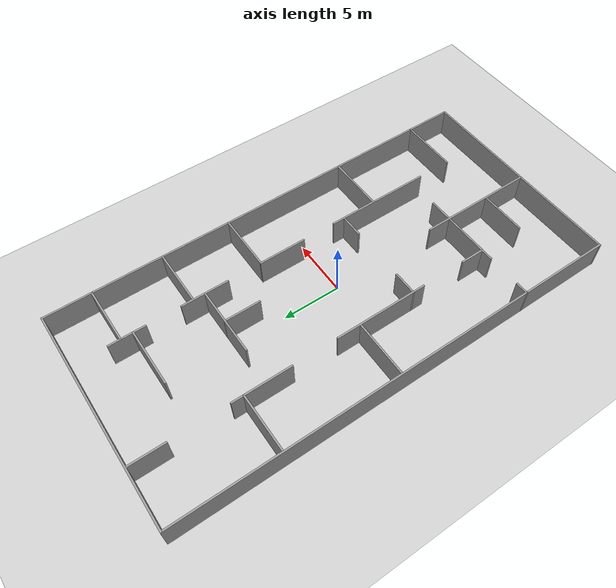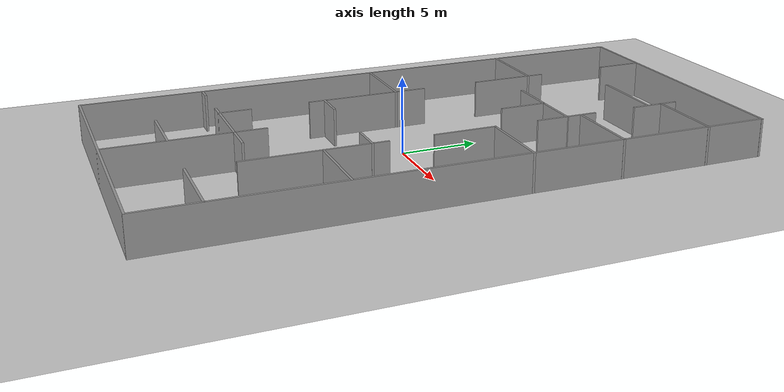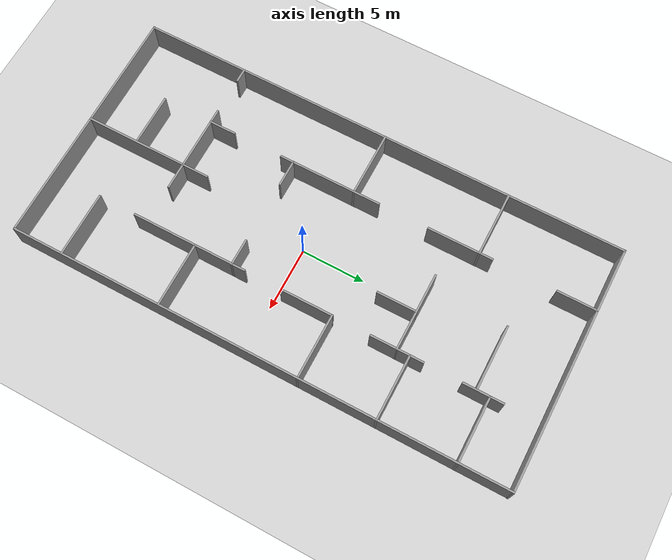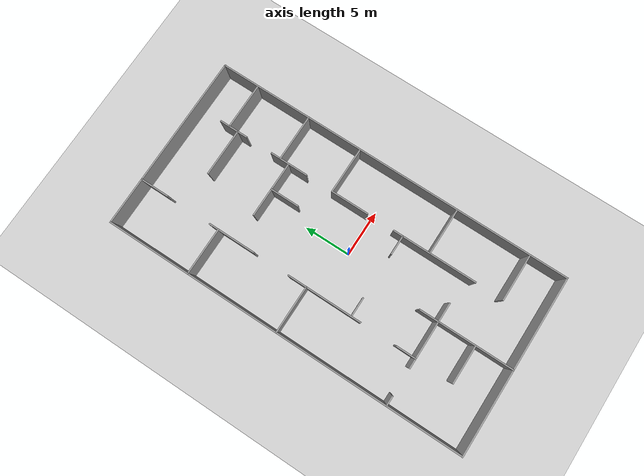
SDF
<sdf version="1.6">
 <world name="default">
  <light name="sun" type="directional">
   <pose>0 0 10 0 -0 0</pose>
   <diffuse>0.8 0.8 0.8 1</diffuse>
   <specular>0.1 0.1 0.1 1</specular>
   <attenuation>
    <range>1000</range>
    <constant>0.9</constant>
    <linear>0.01</linear>
    <quadratic>0.001</quadratic>
   </attenuation>
   <direction>-0.5 0.5 -1</direction>
  </light>
  <model name="ground_plane">
   <static>1</static>
   <link name="link">
    <collision name="collision">
     <geometry><plane><normal>0 0 1</normal><size>100 100</size></plane></geometry>
     <surface><friction><ode><mu>100</mu><mu2>50</mu2></ode></friction></surface>
    </collision>
    <visual name="visual">
     <cast_shadows>0</cast_shadows>
     <geometry><plane><normal>0 0 1</normal><size>100 100</size></plane></geometry>
     <material>
      <script><uri>file://media/materials/scripts/gazebo.material</uri><name>Gazebo/Grey</name></script>
     </material>
    </visual>
   </link>
  </model>
  <gravity>0 0 -9.8</gravity>
  <magnetic_field>6e-06 2.3e-05 -4.2e-05</magnetic_field>
  <atmosphere type="adiabatic"/>
  <physics name="default_physics" default="0" type="ode">
   <max_step_size>0.001</max_step_size>
   <real_time_factor>1</real_time_factor>
   <real_time_update_rate>1000</real_time_update_rate>
  </physics>
  <scene><ambient>0.4 0.4 0.4 1</ambient><background>0.7 0.7 0.7 1</background><shadows>1</shadows></scene>
  <spherical_coordinates>
   <surface_model>EARTH_WGS84</surface_model>
   <latitude_deg>0</latitude_deg>
   <longitude_deg>0</longitude_deg>
   <elevation>0</elevation>
   <heading_deg>0</heading_deg>
  </spherical_coordinates>
  <model name="test">
   <link name="Wall_0">
    <collision name="Wall_0_Collision">
     <geometry><box><size>19.15 0.15 2.5</size></box></geometry>
     <pose>0 0 1.25 0 -0 0</pose>
    </collision>
    <visual name="Wall_0_Visual">
     <pose>0 0 1.25 0 -0 0</pose>
     <geometry><box><size>19.15 0.15 2.5</size></box></geometry>
     <material>
      <script><uri>file://media/materials/scripts/gazebo.material</uri><name>Gazebo/Grey</name></script>
      <ambient>1 1 1 1</ambient>
     </material>
    </visual>
    <pose>-0.50 20.50 0 0 -0 0.00</pose>
   </link>
   <link name="Wall_1">
    <collision name="Wall_1_Collision">
     <geometry><box><size>5.15 0.15 2.5</size></box></geometry>
     <pose>0 0 1.25 0 -0 0</pose>
    </collision>
    <visual name="Wall_1_Visual">
     <pose>0 0 1.25 0 -0 0</pose>
     <geometry><box><size>5.15 0.15 2.5</size></box></geometry>
     <material>
      <script><uri>file://media/materials/scripts/gazebo.material</uri><name>Gazebo/Grey</name></script>
      <ambient>1 1 1 1</ambient>
     </material>
    </visual>
    <pose>6.50 16.50 0 0 -0 0.00</pose>
   </link>
   <link name="Wall_2">
    <collision name="Wall_2_Collision">
     <geometry><box><size>5.15 0.15 2.5</size></box></geometry>
     <pose>0 0 1.25 0 -0 0</pose>
    </collision>
    <visual name="Wall_2_Visual">
     <pose>0 0 1.25 0 -0 0</pose>
     <geometry><box><size>5.15 0.15 2.5</size></box></geometry>
     <material>
      <script><uri>file://media/materials/scripts/gazebo.material</uri><name>Gazebo/Grey</name></script>
      <ambient>1 1 1 1</ambient>
     </material>
    </visual>
    <pose>1.50 15.50 0 0 -0 0.00</pose>
   </link>
   <link name="Wall_3">
    <collision name="Wall_3_Collision">
     <geometry><box><size>5.15 0.15 2.5</size></box></geometry>
     <pose>0 0 1.25 0 -0 0</pose>
    </collision>
    <visual name="Wall_3_Visual">
     <pose>0 0 1.25 0 -0 0</pose>
     <geometry><box><size>5.15 0.15 2.5</size></box></geometry>
     <material>
      <script><uri>file://media/materials/scripts/gazebo.material</uri><name>Gazebo/Grey</name></script>
      <ambient>1 1 1 1</ambient>
     </material>
    </visual>
    <pose>-7.50 11.50 0 0 -0 0.00</pose>
   </link>
   <link name="Wall_4">
    <collision name="Wall_4_Collision">
     <geometry><box><size>5.15 0.15 2.5</size></box></geometry>
     <pose>0 0 1.25 0 -0 0</pose>
    </collision>
    <visual name="Wall_4_Visual">
     <pose>0 0 1.25 0 -0 0</pose>
     <geometry><box><size>5.15 0.15 2.5</size></box></geometry>
     <material>
      <script><uri>file://media/materials/scripts/gazebo.material</uri><name>Gazebo/Grey</name></script>
      <ambient>1 1 1 1</ambient>
     </material>
    </visual>
    <pose>6.50 10.50 0 0 -0 0.00</pose>
   </link>
   <link name="Wall_5">
    <collision name="Wall_5_Collision">
     <geometry><box><size>6.15 0.15 2.5</size></box></geometry>
     <pose>0 0 1.25 0 -0 0</pose>
    </collision>
    <visual name="Wall_5_Visual">
     <pose>0 0 1.25 0 -0 0</pose>
     <geometry><box><size>6.15 0.15 2.5</size></box></geometry>
     <material>
      <script><uri>file://media/materials/scripts/gazebo.material</uri><name>Gazebo/Grey</name></script>
      <ambient>1 1 1 1</ambient>
     </material>
    </visual>
    <pose>1.00 9.50 0 0 -0 0.00</pose>
   </link>
   <link name="Wall_6">
    <collision name="Wall_6_Collision">
     <geometry><box><size>5.15 0.15 2.5</size></box></geometry>
     <pose>0 0 1.25 0 -0 0</pose>
    </collision>
    <visual name="Wall_6_Visual">
     <pose>0 0 1.25 0 -0 0</pose>
     <geometry><box><size>5.15 0.15 2.5</size></box></geometry>
     <material>
      <script><uri>file://media/materials/scripts/gazebo.material</uri><name>Gazebo/Grey</name></script>
      <ambient>1 1 1 1</ambient>
     </material>
    </visual>
    <pose>6.50 4.50 0 0 -0 0.00</pose>
   </link>
   <link name="Wall_7">
    <collision name="Wall_7_Collision">
     <geometry><box><size>5.15 0.15 2.5</size></box></geometry>
     <pose>0 0 1.25 0 -0 0</pose>
    </collision>
    <visual name="Wall_7_Visual">
     <pose>0 0 1.25 0 -0 0</pose>
     <geometry><box><size>5.15 0.15 2.5</size></box></geometry>
     <material>
      <script><uri>file://media/materials/scripts/gazebo.material</uri><name>Gazebo/Grey</name></script>
      <ambient>1 1 1 1</ambient>
     </material>
    </visual>
    <pose>-7.50 1.50 0 0 -0 0.00</pose>
   </link>
   <link name="Wall_8">
    <collision name="Wall_8_Collision">
     <geometry><box><size>2.15 0.15 2.5</size></box></geometry>
     <pose>0 0 1.25 0 -0 0</pose>
    </collision>
    <visual name="Wall_8_Visual">
     <pose>0 0 1.25 0 -0 0</pose>
     <geometry><box><size>2.15 0.15 2.5</size></box></geometry>
     <material>
      <script><uri>file://media/materials/scripts/gazebo.material</uri><name>Gazebo/Grey</name></script>
      <ambient>1 1 1 1</ambient>
     </material>
    </visual>
    <pose>-4.00 -3.50 0 0 -0 0.00</pose>
   </link>
   <link name="Wall_9">
    <collision name="Wall_9_Collision">
     <geometry><box><size>2.15 0.15 2.5</size></box></geometry>
     <pose>0 0 1.25 0 -0 0</pose>
    </collision>
    <visual name="Wall_9_Visual">
     <pose>0 0 1.25 0 -0 0</pose>
     <geometry><box><size>2.15 0.15 2.5</size></box></geometry>
     <material>
      <script><uri>file://media/materials/scripts/gazebo.material</uri><name>Gazebo/Grey</name></script>
      <ambient>1 1 1 1</ambient>
     </material>
    </visual>
    <pose>3.00 -3.50 0 0 -0 0.00</pose>
   </link>
   <link name="Wall_10">
    <collision name="Wall_10_Collision">
     <geometry><box><size>5.15 0.15 2.5</size></box></geometry>
     <pose>0 0 1.25 0 -0 0</pose>
    </collision>
    <visual name="Wall_10_Visual">
     <pose>0 0 1.25 0 -0 0</pose>
     <geometry><box><size>5.15 0.15 2.5</size></box></geometry>
     <material>
      <script><uri>file://media/materials/scripts/gazebo.material</uri><name>Gazebo/Grey</name></script>
      <ambient>1 1 1 1</ambient>
     </material>
    </visual>
    <pose>6.50 -6.50 0 0 -0 0.00</pose>
   </link>
   <link name="Wall_11">
    <collision name="Wall_11_Collision">
     <geometry><box><size>1.15 0.15 2.5</size></box></geometry>
     <pose>0 0 1.25 0 -0 0</pose>
    </collision>
    <visual name="Wall_11_Visual">
     <pose>0 0 1.25 0 -0 0</pose>
     <geometry><box><size>1.15 0.15 2.5</size></box></geometry>
     <material>
      <script><uri>file://media/materials/scripts/gazebo.material</uri><name>Gazebo/Grey</name></script>
      <ambient>1 1 1 1</ambient>
     </material>
    </visual>
    <pose>-9.50 -10.50 0 0 -0 0.00</pose>
   </link>
   <link name="Wall_12">
    <collision name="Wall_12_Collision">
     <geometry><box><size>7.15 0.15 2.5</size></box></geometry>
     <pose>0 0 1.25 0 -0 0</pose>
    </collision>
    <visual name="Wall_12_Visual">
     <pose>0 0 1.25 0 -0 0</pose>
     <geometry><box><size>7.15 0.15 2.5</size></box></geometry>
     <material>
      <script><uri>file://media/materials/scripts/gazebo.material</uri><name>Gazebo/Grey</name></script>
      <ambient>1 1 1 1</ambient>
     </material>
    </visual>
    <pose>-2.50 -10.50 0 0 -0 0.00</pose>
   </link>
   <link name="Wall_13">
    <collision name="Wall_13_Collision">
     <geometry><box><size>4.15 0.15 2.5</size></box></geometry>
     <pose>0 0 1.25 0 -0 0</pose>
    </collision>
    <visual name="Wall_13_Visual">
     <pose>0 0 1.25 0 -0 0</pose>
     <geometry><box><size>4.15 0.15 2.5</size></box></geometry>
     <material>
      <script><uri>file://media/materials/scripts/gazebo.material</uri><name>Gazebo/Grey</name></script>
      <ambient>1 1 1 1</ambient>
     </material>
    </visual>
    <pose>-3.00 -14.50 0 0 -0 0.00</pose>
   </link>
   <link name="Wall_14">
    <collision name="Wall_14_Collision">
     <geometry><box><size>5.15 0.15 2.5</size></box></geometry>
     <pose>0 0 1.25 0 -0 0</pose>
    </collision>
    <visual name="Wall_14_Visual">
     <pose>0 0 1.25 0 -0 0</pose>
     <geometry><box><size>5.15 0.15 2.5</size></box></geometry>
     <material>
      <script><uri>file://media/materials/scripts/gazebo.material</uri><name>Gazebo/Grey</name></script>
      <ambient>1 1 1 1</ambient>
     </material>
    </visual>
    <pose>6.50 -14.50 0 0 -0 0.00</pose>
   </link>
   <link name="Wall_15">
    <collision name="Wall_15_Collision">
     <geometry><box><size>19.15 0.15 2.5</size></box></geometry>
     <pose>0 0 1.25 0 -0 0</pose>
    </collision>
    <visual name="Wall_15_Visual">
     <pose>0 0 1.25 0 -0 0</pose>
     <geometry><box><size>19.15 0.15 2.5</size></box></geometry>
     <material>
      <script><uri>file://media/materials/scripts/gazebo.material</uri><name>Gazebo/Grey</name></script>
      <ambient>1 1 1 1</ambient>
     </material>
    </visual>
    <pose>-0.50 -18.50 0 0 -0 0.00</pose>
   </link>
   <link name="Wall_16">
    <collision name="Wall_16_Collision">
     <geometry><box><size>39.15 0.15 2.5</size></box></geometry>
     <pose>0 0 1.25 0 -0 0</pose>
    </collision>
    <visual name="Wall_16_Visual">
     <pose>0 0 1.25 0 -0 0</pose>
     <geometry><box><size>39.15 0.15 2.5</size></box></geometry>
     <material>
      <script><uri>file://media/materials/scripts/gazebo.material</uri><name>Gazebo/Grey</name></script>
      <ambient>1 1 1 1</ambient>
     </material>
    </visual>
    <pose>-10.00 1.00 0 0 -0 -1.57</pose>
   </link>
   <link name="Wall_17">
    <collision name="Wall_17_Collision">
     <geometry><box><size>3.15 0.15 2.5</size></box></geometry>
     <pose>0 0 1.25 0 -0 0</pose>
    </collision>
    <visual name="Wall_17_Visual">
     <pose>0 0 1.25 0 -0 0</pose>
     <geometry><box><size>3.15 0.15 2.5</size></box></geometry>
     <material>
      <script><uri>file://media/materials/scripts/gazebo.material</uri><name>Gazebo/Grey</name></script>
      <ambient>1 1 1 1</ambient>
     </material>
    </visual>
    <pose>-5.00 19.00 0 0 -0 -1.57</pose>
   </link>
   <link name="Wall_18">
    <collision name="Wall_18_Collision">
     <geometry><box><size>5.15 0.15 2.5</size></box></geometry>
     <pose>0 0 1.25 0 -0 0</pose>
    </collision>
    <visual name="Wall_18_Visual">
     <pose>0 0 1.25 0 -0 0</pose>
     <geometry><box><size>5.15 0.15 2.5</size></box></geometry>
     <material>
      <script><uri>file://media/materials/scripts/gazebo.material</uri><name>Gazebo/Grey</name></script>
      <ambient>1 1 1 1</ambient>
     </material>
    </visual>
    <pose>-5.00 10.00 0 0 -0 -1.57</pose>
   </link>
   <link name="Wall_19">
    <collision name="Wall_19_Collision">
     <geometry><box><size>8.15 0.15 2.5</size></box></geometry>
     <pose>0 0 1.25 0 -0 0</pose>
    </collision>
    <visual name="Wall_19_Visual">
     <pose>0 0 1.25 0 -0 0</pose>
     <geometry><box><size>8.15 0.15 2.5</size></box></geometry>
     <material>
      <script><uri>file://media/materials/scripts/gazebo.material</uri><name>Gazebo/Grey</name></script>
      <ambient>1 1 1 1</ambient>
     </material>
    </visual>
    <pose>-5.00 -0.50 0 0 -0 -1.57</pose>
   </link>
   <link name="Wall_20">
    <collision name="Wall_20_Collision">
     <geometry><box><size>2.15 0.15 2.5</size></box></geometry>
     <pose>0 0 1.25 0 -0 0</pose>
    </collision>
    <visual name="Wall_20_Visual">
     <pose>0 0 1.25 0 -0 0</pose>
     <geometry><box><size>2.15 0.15 2.5</size></box></geometry>
     <material>
      <script><uri>file://media/materials/scripts/gazebo.material</uri><name>Gazebo/Grey</name></script>
      <ambient>1 1 1 1</ambient>
     </material>
    </visual>
    <pose>-5.00 -9.50 0 0 -0 -1.57</pose>
   </link>
   <link name="Wall_21">
    <collision name="Wall_21_Collision">
     <geometry><box><size>10.15 0.15 2.5</size></box></geometry>
     <pose>0 0 1.25 0 -0 0</pose>
    </collision>
    <visual name="Wall_21_Visual">
     <pose>0 0 1.25 0 -0 0</pose>
     <geometry><box><size>10.15 0.15 2.5</size></box></geometry>
     <material>
      <script><uri>file://media/materials/scripts/gazebo.material</uri><name>Gazebo/Grey</name></script>
      <ambient>1 1 1 1</ambient>
     </material>
    </visual>
    <pose>-1.00 -13.50 0 0 -0 -1.57</pose>
   </link>
   <link name="Wall_22">
    <collision name="Wall_22_Collision">
     <geometry><box><size>3.15 0.15 2.5</size></box></geometry>
     <pose>0 0 1.25 0 -0 0</pose>
    </collision>
    <visual name="Wall_22_Visual">
     <pose>0 0 1.25 0 -0 0</pose>
     <geometry><box><size>3.15 0.15 2.5</size></box></geometry>
     <material>
      <script><uri>file://media/materials/scripts/gazebo.material</uri><name>Gazebo/Grey</name></script>
      <ambient>1 1 1 1</ambient>
     </material>
    </visual>
    <pose>1.00 8.00 0 0 -0 -1.57</pose>
   </link>
   <link name="Wall_23">
    <collision name="Wall_23_Collision">
     <geometry><box><size>3.15 0.15 2.5</size></box></geometry>
     <pose>0 0 1.25 0 -0 0</pose>
    </collision>
    <visual name="Wall_23_Visual">
     <pose>0 0 1.25 0 -0 0</pose>
     <geometry><box><size>3.15 0.15 2.5</size></box></geometry>
     <material>
      <script><uri>file://media/materials/scripts/gazebo.material</uri><name>Gazebo/Grey</name></script>
      <ambient>1 1 1 1</ambient>
     </material>
    </visual>
    <pose>4.00 16.00 0 0 -0 -1.57</pose>
   </link>
   <link name="Wall_24">
    <collision name="Wall_24_Collision">
     <geometry><box><size>4.15 0.15 2.5</size></box></geometry>
     <pose>0 0 1.25 0 -0 0</pose>
    </collision>
    <visual name="Wall_24_Visual">
     <pose>0 0 1.25 0 -0 0</pose>
     <geometry><box><size>4.15 0.15 2.5</size></box></geometry>
     <material>
      <script><uri>file://media/materials/scripts/gazebo.material</uri><name>Gazebo/Grey</name></script>
      <ambient>1 1 1 1</ambient>
     </material>
    </visual>
    <pose>4.00 9.50 0 0 -0 -1.57</pose>
   </link>
   <link name="Wall_25">
    <collision name="Wall_25_Collision">
     <geometry><box><size>4.15 0.15 2.5</size></box></geometry>
     <pose>0 0 1.25 0 -0 0</pose>
    </collision>
    <visual name="Wall_25_Visual">
     <pose>0 0 1.25 0 -0 0</pose>
     <geometry><box><size>4.15 0.15 2.5</size></box></geometry>
     <material>
      <script><uri>file://media/materials/scripts/gazebo.material</uri><name>Gazebo/Grey</name></script>
      <ambient>1 1 1 1</ambient>
     </material>
    </visual>
    <pose>4.00 2.50 0 0 -0 -1.57</pose>
   </link>
   <link name="Wall_26">
    <collision name="Wall_26_Collision">
     <geometry><box><size>9.15 0.15 2.5</size></box></geometry>
     <pose>0 0 1.25 0 -0 0</pose>
    </collision>
    <visual name="Wall_26_Visual">
     <pose>0 0 1.25 0 -0 0</pose>
     <geometry><box><size>9.15 0.15 2.5</size></box></geometry>
     <material>
      <script><uri>file://media/materials/scripts/gazebo.material</uri><name>Gazebo/Grey</name></script>
      <ambient>1 1 1 1</ambient>
     </material>
    </visual>
    <pose>4.00 -7.00 0 0 -0 -1.57</pose>
   </link>
   <link name="Wall_27">
    <collision name="Wall_27_Collision">
     <geometry><box><size>39.15 0.15 2.5</size></box></geometry>
     <pose>0 0 1.25 0 -0 0</pose>
    </collision>
    <visual name="Wall_27_Visual">
     <pose>0 0 1.25 0 -0 0</pose>
     <geometry><box><size>39.15 0.15 2.5</size></box></geometry>
     <material>
      <script><uri>file://media/materials/scripts/gazebo.material</uri><name>Gazebo/Grey</name></script>
      <ambient>1 1 1 1</ambient>
     </material>
    </visual>
    <pose>9.00 1.00 0 0 -0 -1.57</pose>
   </link>
   <static>1</static>
  </model>
 </world>
</sdf>
